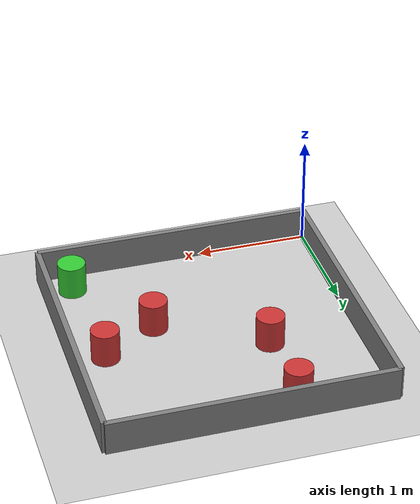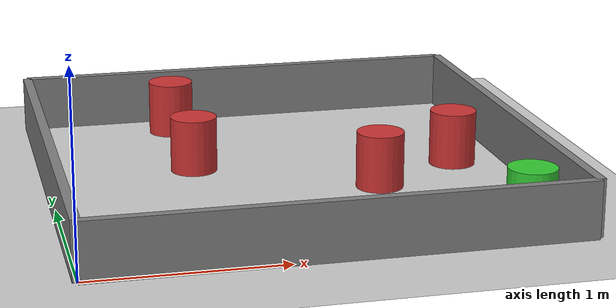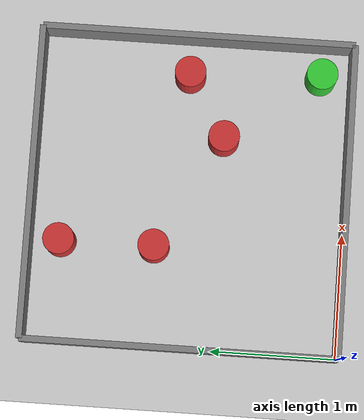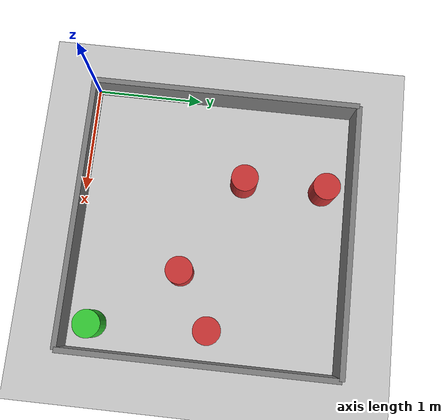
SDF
<?xml version="1.0"?>
<sdf version="1.6">
  <world name="room_12">
    <include>
      <uri>model://ground_plane</uri>
    </include>
    <include>
      <uri>model://sun</uri>
    </include>
    <scene>
      <shadows>false</shadows>
    </scene>
    <gui fullscreen='0'>
      <camera name='user_camera'>
        <pose frame=''>1.25 1.25 3.5 0 1.2 0.8</pose>
        <view_controller>orbit</view_controller>
        <projection_type>perspective</projection_type>
      </camera>
    </gui>
    <!-- Bottom wall -->
    <model name="wall_bottom">
      <static>true</static>
      <link name="link">
        <collision name="collision">
          <geometry><box><size>2.5 0.05 0.3</size></box></geometry>
        </collision>
        <visual name="visual">
          <geometry><box><size>2.5 0.05 0.3</size></box></geometry>
          <material><ambient>0.5 0.5 0.5 1</ambient></material>
        </visual>
      </link>
      <pose>1.25 0 0.15 0 0 0</pose>
    </model>
    <!-- Top wall -->
    <model name="wall_top">
      <static>true</static>
      <link name="link">
        <collision name="collision">
          <geometry><box><size>2.5 0.05 0.3</size></box></geometry>
        </collision>
        <visual name="visual">
          <geometry><box><size>2.5 0.05 0.3</size></box></geometry>
          <material><ambient>0.5 0.5 0.5 1</ambient></material>
        </visual>
      </link>
      <pose>1.25 2.5 0.15 0 0 0</pose>
    </model>
    <!-- Left wall -->
    <model name="wall_left">
      <static>true</static>
      <link name="link">
        <collision name="collision">
          <geometry><box><size>0.05 2.5 0.3</size></box></geometry>
        </collision>
        <visual name="visual">
          <geometry><box><size>0.05 2.5 0.3</size></box></geometry>
          <material><ambient>0.5 0.5 0.5 1</ambient></material>
        </visual>
      </link>
      <pose>0 1.25 0.15 0 0 0</pose>
    </model>
    <!-- Right wall -->
    <model name="wall_right">
      <static>true</static>
      <link name="link">
        <collision name="collision">
          <geometry><box><size>0.05 2.5 0.3</size></box></geometry>
        </collision>
        <visual name="visual">
          <geometry><box><size>0.05 2.5 0.3</size></box></geometry>
          <material><ambient>0.5 0.5 0.5 1</ambient></material>
        </visual>
      </link>
      <pose>2.5 1.25 0.15 0 0 0</pose>
    </model>
    <!-- Pillar T1 -->
    <model name="pillar_T1">
      <static>true</static>
      <link name="link">
        <collision name="collision">
          <geometry><cylinder><radius>0.125</radius><length>0.3</length></cylinder></geometry>
        </collision>
        <visual name="visual">
          <geometry><cylinder><radius>0.125</radius><length>0.3</length></cylinder></geometry>
          <material><ambient>0.8 0.2 0.2 1</ambient></material>
        </visual>
      </link>
      <pose>0.8 2.25 0.15 0 0 0</pose>
    </model>
    <!-- Pillar T2 -->
    <model name="pillar_T2">
      <static>true</static>
      <link name="link">
        <collision name="collision">
          <geometry><cylinder><radius>0.125</radius><length>0.3</length></cylinder></geometry>
        </collision>
        <visual name="visual">
          <geometry><cylinder><radius>0.125</radius><length>0.3</length></cylinder></geometry>
          <material><ambient>0.8 0.2 0.2 1</ambient></material>
        </visual>
      </link>
      <pose>0.8 1.5 0.15 0 0 0</pose>
    </model>
    <!-- Pillar T3 -->
    <model name="pillar_T3">
      <static>true</static>
      <link name="link">
        <collision name="collision">
          <geometry><cylinder><radius>0.125</radius><length>0.3</length></cylinder></geometry>
        </collision>
        <visual name="visual">
          <geometry><cylinder><radius>0.125</radius><length>0.3</length></cylinder></geometry>
          <material><ambient>0.8 0.2 0.2 1</ambient></material>
        </visual>
      </link>
      <pose>1.7 1.0 0.15 0 0 0</pose>
    </model>
    <!-- Pillar T4 -->
    <model name="pillar_T4">
      <static>true</static>
      <link name="link">
        <collision name="collision">
          <geometry><cylinder><radius>0.125</radius><length>0.3</length></cylinder></geometry>
        </collision>
        <visual name="visual">
          <geometry><cylinder><radius>0.125</radius><length>0.3</length></cylinder></geometry>
          <material><ambient>0.8 0.2 0.2 1</ambient></material>
        </visual>
      </link>
      <pose>2.2 1.3 0.15 0 0 0</pose>
    </model>
    <!-- Charger -->
    <model name="charger">
      <static>true</static>
      <link name="link">
        <collision name="collision">
          <geometry><cylinder><radius>0.125</radius><length>0.3</length></cylinder></geometry>
        </collision>
        <visual name="visual">
          <geometry><cylinder><radius>0.125</radius><length>0.3</length></cylinder></geometry>
          <material><ambient>0.2 0.8 0.2 1</ambient></material>
        </visual>
      </link>
      <pose>2.25 0.25 0.15 0 0 0</pose>
    </model>
  </world>
</sdf>
